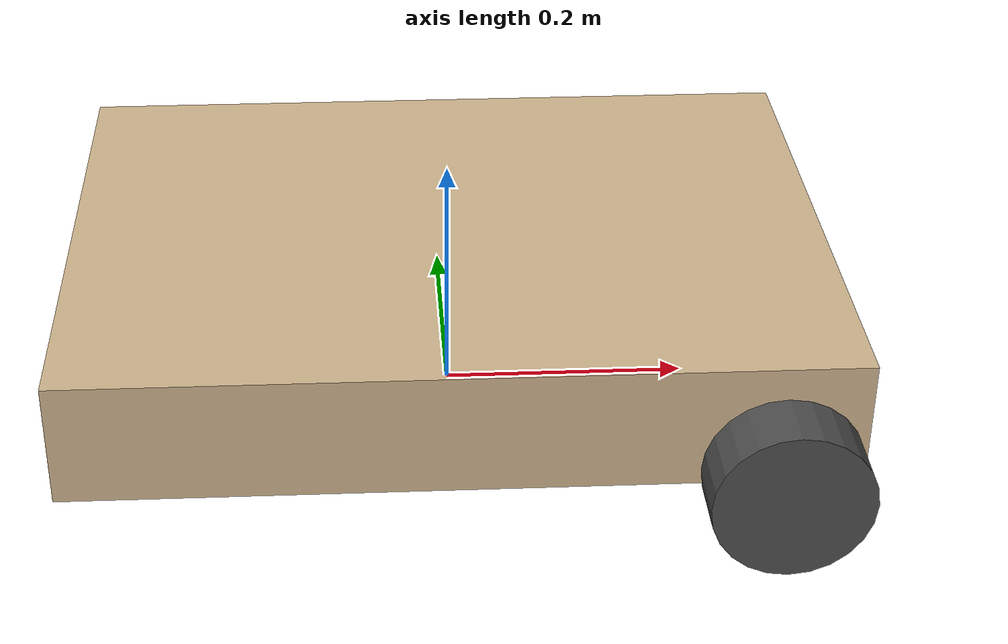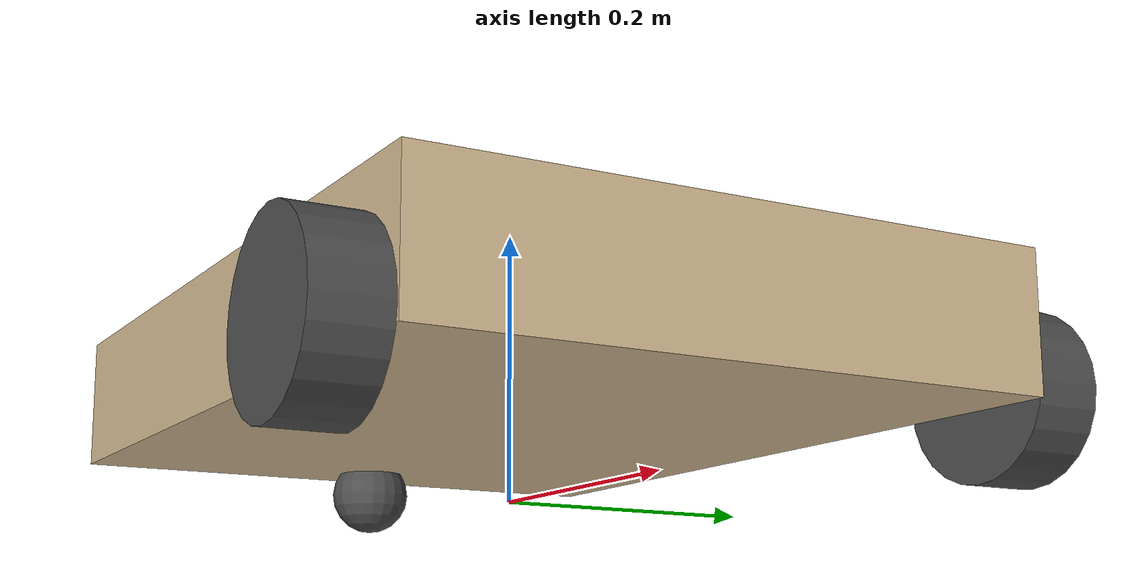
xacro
<?xml version="1.0"?>
<robot xmlns:xacro="http://www.ros.org/wiki/xacro" name="collector_bot">
  <!-- Properties (all values in meters) -->
  <property name="INCH_TO_METER" value="0.0254"/>
  <property name="base_length" value="0.6096"/>
  <property name="base_width" value="0.4572"/>
  <property name="base_height" value="0.1"/>
  <property name="wheel_radius" value="0.0619125"/>
  <property name="caster_radius" value="0.03175"/>

  <xacro:property name="M_PI" value="3.1415926535897931" />

  <!-- Links -->
  <link name='base_link'>
    <collision name='collision'>
      <origin xyz="0 0 .1"/>
      <geometry>
        <box size="${base_length} ${base_width} ${base_height}"/>
      </geometry>
    </collision>

    <visual name='visual'>
      <origin xyz="0 0 .1"/>
      <geometry>
        <box size="${base_length} ${base_width} ${base_height}"/>
      </geometry>
      <material name="tan">
        <color rgba=".8 0.7 .55 1"/>
      </material>
    </visual>
  </link>

  <link name='caster'>
    <collision name='collision'>
      <geometry>
        <sphere radius="${caster_radius}"/>
      </geometry>
    </collision>

    <visual name='visual'>
      <geometry>
        <sphere radius="${caster_radius}"/>
      </geometry>
      <material name="dark_grey">
        <color rgba=".3 .3 .3 1"/>
      </material>
    </visual>
  </link>

  <link name='left_wheel_link'>
    <collision>
      <geometry>
        <cylinder radius="${wheel_radius}" length="0.05"/>
      </geometry>
    </collision>

    <visual>
      <geometry>
        <cylinder radius="${wheel_radius}" length="0.05"/>
      </geometry>
      <material name="dark_grey">
        <color rgba=".3 .3 .3 1"/>
      </material>
    </visual>
  </link>

  <link name='right_wheel_link'>
    <collision>
      <geometry>
        <cylinder radius="${wheel_radius}" length="0.05"/>
      </geometry>
    </collision>

    <visual>
      <geometry>
        <cylinder radius="${wheel_radius}" length="0.05"/>
      </geometry>
      <material name="dark_grey">
        <color rgba=".3 .3 .3 1"/>
      </material>
    </visual>
  </link>

  <!-- Joints -->
  <joint name="base_caster" type="fixed">
    <parent link="base_link"/>
    <child link="caster"/>
    <origin xyz="${-base_length/2.0 + 2*INCH_TO_METER} 0 ${caster_radius}"/>
  </joint>

  <joint name="base_left_wheel" type="continuous">
    <parent link="base_link"/>
    <child link="left_wheel_link"/>
    <origin xyz="${base_length/2.0-2.5*INCH_TO_METER} ${-base_width/2.0-0.025} ${wheel_radius}" rpy="${M_PI/2.0} 0 0"/>
    <axis xyz="0 1 0"/>
  </joint>

  <joint name="base_right_wheel" type="continuous">
    <parent link="base_link"/>
    <child link="right_wheel_link"/>
    <origin xyz="${base_length/2.0-2.5*INCH_TO_METER} ${base_width/2.0+0.025} ${wheel_radius}" rpy="${M_PI/2.0} 0 0"/>
    <axis xyz="0 1 0"/>
  </joint>
</robot>
